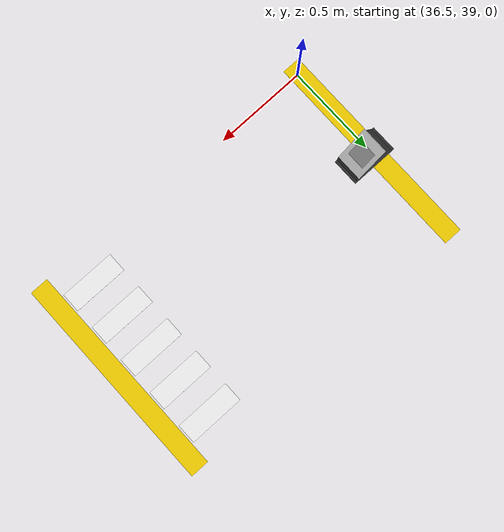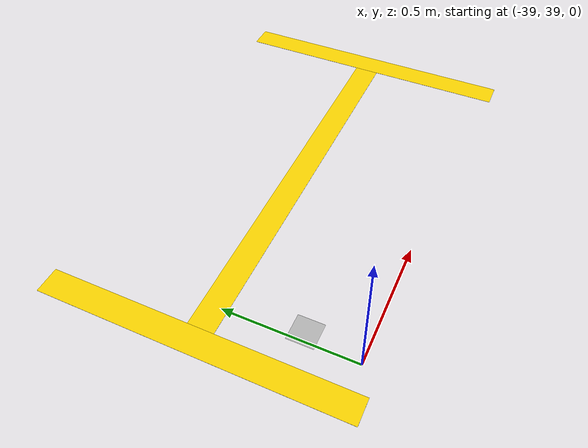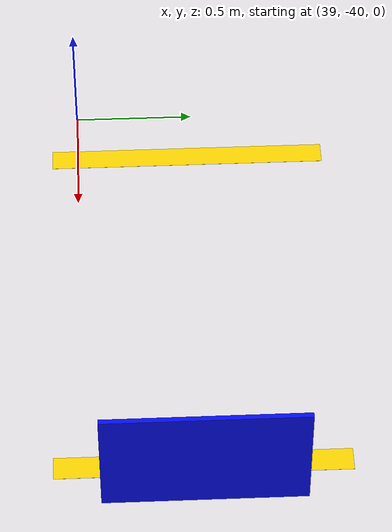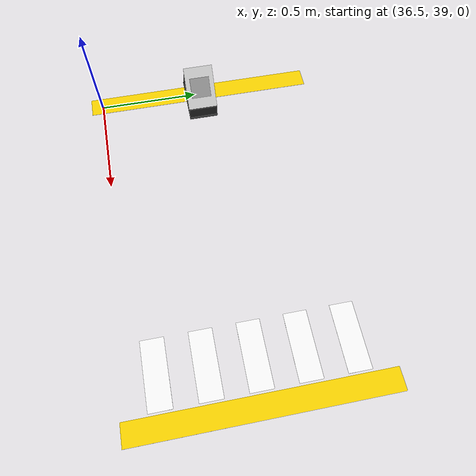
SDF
<sdf version="1.6">
 <world name="competition_scene">
  <gravity>0 0 -9.81</gravity>
  <physics name="ode" type="ode">
   <max_step_size>0.001</max_step_size>
   <real_time_update_rate>1000</real_time_update_rate>
  </physics>
  <scene>
   <ambient>0.6 0.6 0.6 1</ambient>
   <background>0.65 0.80 0.95 1</background>
   <shadows>false</shadows>
  </scene>
  <light name="sun" type="directional">
   <diffuse>0.8 0.8 0.8 1</diffuse>
   <specular>0.1 0.1 0.1 1</specular>
   <direction>-0.3 0.2 -1</direction>
  </light>
  <model name="comp_start_zone">
   <static>true</static>
   <link name="body">
    <inertial>
     <pose>0 0 0.04 0 0 0</pose>
     <mass>0.1</mass>
     <inertia><ixx>0.001</ixx><iyy>0.001</iyy><izz>0.001</izz><ixy>0</ixy><ixz>0</ixz><iyz>0</iyz></inertia>
    </inertial>
    <visual name="yellow_0">
     <pose>-0.8275000000000012 0 0.001 0 0 0</pose>
     <geometry><box><size>0.1 1.1700000000000017 0.0006</size></box></geometry>
     <material><ambient>1 0.85 0 1</ambient><diffuse>1 0.85 0 1</diffuse><specular>0 0 0 1</specular></material>
     <cast_shadows>false</cast_shadows>
    </visual>
    <visual name="yellow_1">
     <pose>0.8275000000000012 0 0.001 0 0 0</pose>
     <geometry><box><size>0.1 1.1700000000000017 0.0006</size></box></geometry>
     <material><ambient>1 0.85 0 1</ambient><diffuse>1 0.85 0 1</diffuse><specular>0 0 0 1</specular></material>
     <cast_shadows>false</cast_shadows>
    </visual>
   </link>
   <pose>40.072500000000005 -39.525 0 0 0 0.0</pose>
  </model>
  <model name="comp_start_barrier">
   <static>true</static>
   <link name="body">
    <inertial>
     <pose>0 0 0.04 0 0 0</pose>
     <mass>0.1</mass>
     <inertia><ixx>0.001</ixx><iyy>0.001</iyy><izz>0.001</izz><ixy>0</ixy><ixz>0</ixz><iyz>0</iyz></inertia>
    </inertial>
    <visual name="barrier">
     <pose>0 0 0.25 0 0 0</pose>
     <geometry><box><size>0.02 0.8 0.5</size></box></geometry>
     <material>
      <ambient>0.02 0.05 0.95 1</ambient>
      <diffuse>0.02 0.05 0.95 1</diffuse>
      <specular>0 0 0 1</specular>
     </material>
     <cast_shadows>false</cast_shadows>
    </visual>
    <collision name="barrier">
     <pose>0 0 0.25 0 0 0</pose>
     <geometry><box><size>0.02 0.8 0.5</size></box></geometry>
    </collision>
   </link>
   <pose>41.06 -39.525 0 0 0 0.0</pose>
  </model>
  <model name="comp_region2">
   <static>true</static>
   <link name="body">
    <inertial>
     <pose>0 0 0.04 0 0 0</pose>
     <mass>0.1</mass>
     <inertia><ixx>0.001</ixx><iyy>0.001</iyy><izz>0.001</izz><ixy>0</ixy><ixz>0</ixz><iyz>0</iyz></inertia>
    </inertial>
    <visual name="yellow_0">
     <pose>-0.8275000000000012 0 0.001 0 0 0</pose>
     <geometry><box><size>0.1 1.1700000000000017 0.0006</size></box></geometry>
     <material><ambient>1 0.85 0 1</ambient><diffuse>1 0.85 0 1</diffuse><specular>0 0 0 1</specular></material>
     <cast_shadows>false</cast_shadows>
    </visual>
    <visual name="yellow_1">
     <pose>0.8275000000000012 0 0.001 0 0 0</pose>
     <geometry><box><size>0.1 1.1700000000000017 0.0006</size></box></geometry>
     <material><ambient>1 0.85 0 1</ambient><diffuse>1 0.85 0 1</diffuse><specular>0 0 0 1</specular></material>
     <cast_shadows>false</cast_shadows>
    </visual>
   </link>
   <pose>37.3175 39.525 0 0 0 3.141592653589793</pose>
  </model>
  <model name="comp_crosswalk">
   <static>true</static>
   <link name="body">
    <inertial>
     <pose>0 0 0.04 0 0 0</pose>
     <mass>0.1</mass>
     <inertia><ixx>0.001</ixx><iyy>0.001</iyy><izz>0.001</izz><ixy>0</ixy><ixz>0</ixz><iyz>0</iyz></inertia>
    </inertial>
    <visual name="paper_0">
     <pose>0 -0.42 0.001 0 0 0</pose>
     <geometry><box><size>0.297 0.105 0.0006</size></box></geometry>
     <material><ambient>1 1 1 1</ambient><diffuse>1 1 1 1</diffuse><specular>0 0 0 1</specular></material>
     <cast_shadows>false</cast_shadows>
    </visual>
    <visual name="paper_1">
     <pose>0 -0.21 0.001 0 0 0</pose>
     <geometry><box><size>0.297 0.105 0.0006</size></box></geometry>
     <material><ambient>1 1 1 1</ambient><diffuse>1 1 1 1</diffuse><specular>0 0 0 1</specular></material>
     <cast_shadows>false</cast_shadows>
    </visual>
    <visual name="paper_2">
     <pose>0 0.0 0.001 0 0 0</pose>
     <geometry><box><size>0.297 0.105 0.0006</size></box></geometry>
     <material><ambient>1 1 1 1</ambient><diffuse>1 1 1 1</diffuse><specular>0 0 0 1</specular></material>
     <cast_shadows>false</cast_shadows>
    </visual>
    <visual name="paper_3">
     <pose>0 0.21 0.001 0 0 0</pose>
     <geometry><box><size>0.297 0.105 0.0006</size></box></geometry>
     <material><ambient>1 1 1 1</ambient><diffuse>1 1 1 1</diffuse><specular>0 0 0 1</specular></material>
     <cast_shadows>false</cast_shadows>
    </visual>
    <visual name="paper_4">
     <pose>0 0.42 0.001 0 0 0</pose>
     <geometry><box><size>0.297 0.105 0.0006</size></box></geometry>
     <material><ambient>1 1 1 1</ambient><diffuse>1 1 1 1</diffuse><specular>0 0 0 1</specular></material>
     <cast_shadows>false</cast_shadows>
    </visual>
   </link>
   <pose>37.9365 39.525 0 0 0 3.141592653589793</pose>
  </model>
  <model name="comp_task2_qr">
   <static>true</static>
   <link name="body">
    <inertial>
     <pose>0 0 0.04 0 0 0</pose>
     <mass>0.1</mass>
     <inertia><ixx>0.001</ixx><iyy>0.001</iyy><izz>0.001</izz><ixy>0</ixy><ixz>0</ixz><iyz>0</iyz></inertia>
    </inertial>
    <visual name="front_panel">
     <pose>0 0 0.135 0 0.7853981633974483 0</pose>
     <geometry><box><size>0.004 0.148 0.21</size></box></geometry>
     <material><ambient>1 1 1 1</ambient><diffuse>1 1 1 1</diffuse><specular>0 0 0 1</specular></material>
     <cast_shadows>false</cast_shadows>
    </visual>
    <collision name="front_panel">
     <pose>0 0 0.135 0 0.7853981633974483 0</pose>
     <geometry><box><size>0.004 0.148 0.21</size></box></geometry>
    </collision>
    <visual name="front_support">
     <pose>-0.07424621202458748 0 0.03037689398770626 0 0 0</pose>
     <geometry><box><size>0.006 0.148 0.06075378797541252</size></box></geometry>
     <material>
      <ambient>0.15 0.15 0.15 1</ambient>
      <diffuse>0.15 0.15 0.15 1</diffuse>
      <specular>0 0 0 1</specular>
     </material>
     <cast_shadows>false</cast_shadows>
    </visual>
    <collision name="front_support">
     <pose>-0.07424621202458748 0 0.03037689398770626 0 0 0</pose>
     <geometry><box><size>0.006 0.148 0.06075378797541252</size></box></geometry>
    </collision>
    <visual name="rear_leg">
     <pose>0.11 0 0.1 0 -0.45 0</pose>
     <geometry><box><size>0.004 0.148 0.2</size></box></geometry>
     <material>
      <ambient>0.15 0.15 0.15 1</ambient>
      <diffuse>0.15 0.15 0.15 1</diffuse>
      <specular>0 0 0 1</specular>
     </material>
     <cast_shadows>false</cast_shadows>
    </visual>
    <collision name="rear_leg">
     <pose>0.11 0 0.1 0 -0.45 0</pose>
     <geometry><box><size>0.004 0.148 0.2</size></box></geometry>
    </collision>
    <visual name="base">
     <pose>0.04 0 0.002 0 0 0</pose>
     <geometry><box><size>0.26 0.148 0.004</size></box></geometry>
     <material>
      <ambient>0.2 0.2 0.2 1</ambient>
      <diffuse>0.2 0.2 0.2 1</diffuse>
      <specular>0 0 0 1</specular>
     </material>
     <cast_shadows>false</cast_shadows>
    </visual>
    <collision name="base">
     <pose>0.04 0 0.002 0 0 0</pose>
     <geometry><box><size>0.26 0.148 0.004</size></box></geometry>
    </collision>
    <visual name="qr">
     <pose>-0.0016263455967290594 0 0.13662634559672907 0 0.7853981633974483 0</pose>
     <geometry><mesh><uri>model://comp_qr_stand/meshes/comp_qr_stand_qr.dae</uri></mesh></geometry>
     <material>
      <script>
       <uri>model://comp_qr_stand/materials/scripts</uri>
       <uri>model://comp_qr_stand/materials/textures</uri>
       <name>competition/comp_qr_stand/qr</name>
      </script>
     </material>
     <cast_shadows>false</cast_shadows>
    </visual>
   </link>
   <pose>36.5737289934626 39.525 0 0 0 3.141592653589793</pose>
  </model>
  <model name="comp_parking_zone">
   <static>true</static>
   <link name="body">
    <inertial>
     <pose>0 0 0.04 0 0 0</pose>
     <mass>0.1</mass>
     <inertia><ixx>0.001</ixx><iyy>0.001</iyy><izz>0.001</izz><ixy>0</ixy><ixz>0</ixz><iyz>0</iyz></inertia>
    </inertial>
    <visual name="yellow_0">
     <pose>-0.8275000000000012 0 0.001 0 0 0</pose>
     <geometry><box><size>0.1 1.1700000000000017 0.0006</size></box></geometry>
     <material><ambient>1 0.85 0 1</ambient><diffuse>1 0.85 0 1</diffuse><specular>0 0 0 1</specular></material>
     <cast_shadows>false</cast_shadows>
    </visual>
    <visual name="yellow_1">
     <pose>0.8275000000000012 0 0.001 0 0 0</pose>
     <geometry><box><size>0.1 1.1700000000000017 0.0006</size></box></geometry>
     <material><ambient>1 0.85 0 1</ambient><diffuse>1 0.85 0 1</diffuse><specular>0 0 0 1</specular></material>
     <cast_shadows>false</cast_shadows>
    </visual>
    <visual name="yellow_divider">
     <pose>0 0 0.001 0 0 0</pose>
     <geometry><box><size>1.5550000000000026 0.1 0.0006</size></box></geometry>
     <material><ambient>1 0.85 0 1</ambient><diffuse>1 0.85 0 1</diffuse><specular>0 0 0 1</specular></material>
     <cast_shadows>false</cast_shadows>
    </visual>
   </link>
   <pose>-38.31750000000002 39.525 0 0 0 3.141592653589793</pose>
  </model>
  <model name="comp_parking_qr_A">
   <static>true</static>
   <link name="body">
    <inertial>
     <pose>0 0 0.04 0 0 0</pose>
     <mass>0.1</mass>
     <inertia><ixx>0.001</ixx><iyy>0.001</iyy><izz>0.001</izz><ixy>0</ixy><ixz>0</ixz><iyz>0</iyz></inertia>
    </inertial>
    <visual name="qr">
     <pose>0 0 0.0021999999999999997 0 0 0</pose>
     <geometry><mesh><uri>model://comp_qr_parking_A/meshes/comp_qr_parking_A_qr.dae</uri></mesh></geometry>
     <material>
      <script>
       <uri>model://comp_qr_parking_A/materials/scripts</uri>
       <uri>model://comp_qr_parking_A/materials/textures</uri>
       <name>competition/comp_qr_parking_A/qr</name>
      </script>
     </material>
     <cast_shadows>false</cast_shadows>
    </visual>
   </link>
   <pose>-38.965000000000025 39.207499999999996 0 0 0 3.141592653589793</pose>
  </model>
  <plugin name="competition_state" filename="libgazebo_ros_state.so">
   <ros><namespace>/gazebo</namespace></ros>
   <update_rate>20</update_rate>
  </plugin>
 </world>
</sdf>
